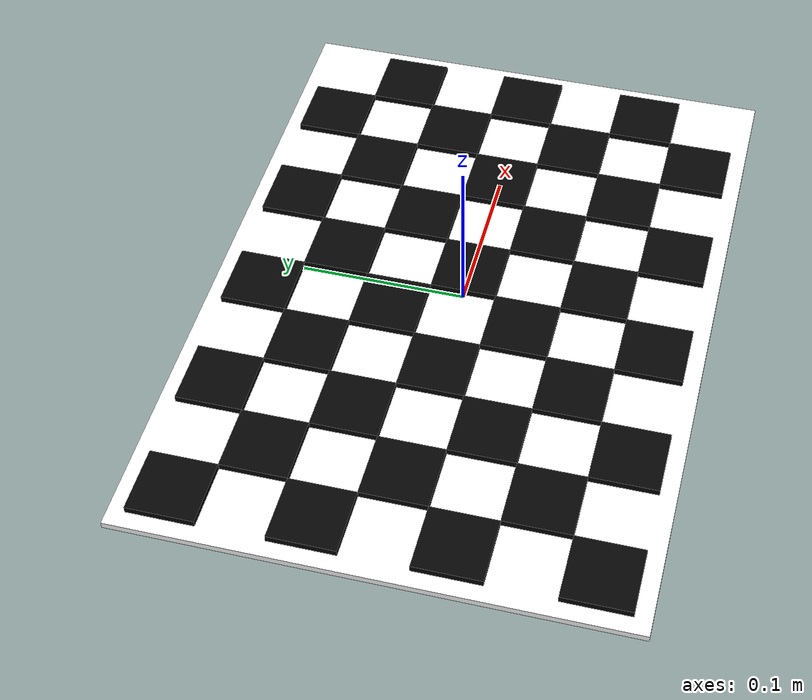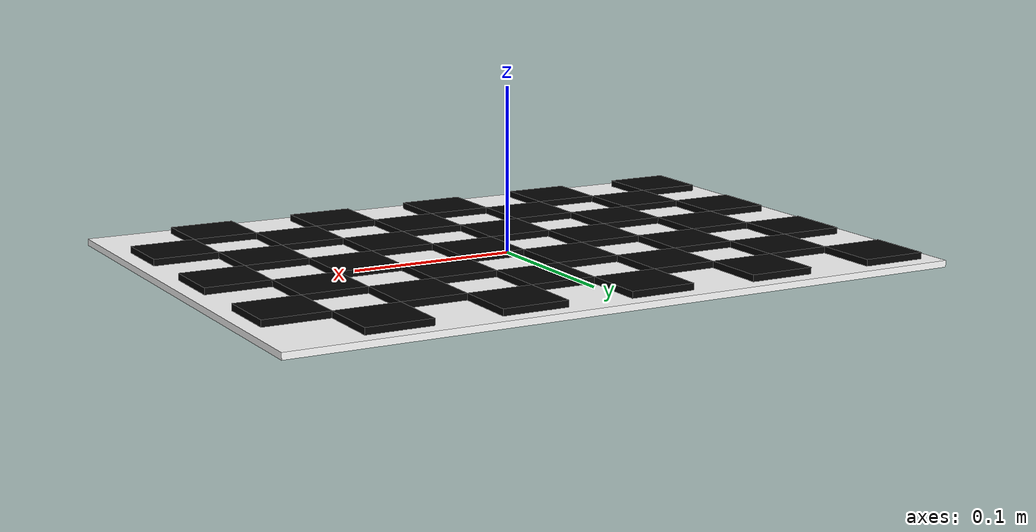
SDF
<?xml version="1.0"?>
<sdf version="1.6">
  <model name="calibration_checkerboard">
    <static>true</static>
    <link name="board">
      <collision name="backing_collision">
        <geometry>
          <box>
            <size>0.42 0.30 0.006</size>
          </box>
        </geometry>
      </collision>
      <visual name="backing">
        <geometry>
          <box>
            <size>0.42 0.30 0.004</size>
          </box>
        </geometry>
        <material>
          <ambient>1 1 1 1</ambient>
          <diffuse>1 1 1 1</diffuse>
        </material>
      </visual>
      <visual name="black_0_0">
        <pose>-0.18 -0.12 0.004 0 0 0</pose>
        <geometry><box><size>0.04 0.04 0.004</size></box></geometry>
        <material><ambient>0.02 0.02 0.02 1</ambient><diffuse>0.02 0.02 0.02 1</diffuse></material>
      </visual>
      <visual name="black_0_2">
        <pose>-0.10 -0.12 0.004 0 0 0</pose>
        <geometry><box><size>0.04 0.04 0.004</size></box></geometry>
        <material><ambient>0.02 0.02 0.02 1</ambient><diffuse>0.02 0.02 0.02 1</diffuse></material>
      </visual>
      <visual name="black_0_4">
        <pose>-0.02 -0.12 0.004 0 0 0</pose>
        <geometry><box><size>0.04 0.04 0.004</size></box></geometry>
        <material><ambient>0.02 0.02 0.02 1</ambient><diffuse>0.02 0.02 0.02 1</diffuse></material>
      </visual>
      <visual name="black_0_6">
        <pose>0.06 -0.12 0.004 0 0 0</pose>
        <geometry><box><size>0.04 0.04 0.004</size></box></geometry>
        <material><ambient>0.02 0.02 0.02 1</ambient><diffuse>0.02 0.02 0.02 1</diffuse></material>
      </visual>
      <visual name="black_0_8">
        <pose>0.14 -0.12 0.004 0 0 0</pose>
        <geometry><box><size>0.04 0.04 0.004</size></box></geometry>
        <material><ambient>0.02 0.02 0.02 1</ambient><diffuse>0.02 0.02 0.02 1</diffuse></material>
      </visual>
      <visual name="black_1_1">
        <pose>-0.14 -0.08 0.004 0 0 0</pose>
        <geometry><box><size>0.04 0.04 0.004</size></box></geometry>
        <material><ambient>0.02 0.02 0.02 1</ambient><diffuse>0.02 0.02 0.02 1</diffuse></material>
      </visual>
      <visual name="black_1_3">
        <pose>-0.06 -0.08 0.004 0 0 0</pose>
        <geometry><box><size>0.04 0.04 0.004</size></box></geometry>
        <material><ambient>0.02 0.02 0.02 1</ambient><diffuse>0.02 0.02 0.02 1</diffuse></material>
      </visual>
      <visual name="black_1_5">
        <pose>0.02 -0.08 0.004 0 0 0</pose>
        <geometry><box><size>0.04 0.04 0.004</size></box></geometry>
        <material><ambient>0.02 0.02 0.02 1</ambient><diffuse>0.02 0.02 0.02 1</diffuse></material>
      </visual>
      <visual name="black_1_7">
        <pose>0.10 -0.08 0.004 0 0 0</pose>
        <geometry><box><size>0.04 0.04 0.004</size></box></geometry>
        <material><ambient>0.02 0.02 0.02 1</ambient><diffuse>0.02 0.02 0.02 1</diffuse></material>
      </visual>
      <visual name="black_1_9">
        <pose>0.18 -0.08 0.004 0 0 0</pose>
        <geometry><box><size>0.04 0.04 0.004</size></box></geometry>
        <material><ambient>0.02 0.02 0.02 1</ambient><diffuse>0.02 0.02 0.02 1</diffuse></material>
      </visual>
      <visual name="black_2_0">
        <pose>-0.18 -0.04 0.004 0 0 0</pose>
        <geometry><box><size>0.04 0.04 0.004</size></box></geometry>
        <material><ambient>0.02 0.02 0.02 1</ambient><diffuse>0.02 0.02 0.02 1</diffuse></material>
      </visual>
      <visual name="black_2_2">
        <pose>-0.10 -0.04 0.004 0 0 0</pose>
        <geometry><box><size>0.04 0.04 0.004</size></box></geometry>
        <material><ambient>0.02 0.02 0.02 1</ambient><diffuse>0.02 0.02 0.02 1</diffuse></material>
      </visual>
      <visual name="black_2_4">
        <pose>-0.02 -0.04 0.004 0 0 0</pose>
        <geometry><box><size>0.04 0.04 0.004</size></box></geometry>
        <material><ambient>0.02 0.02 0.02 1</ambient><diffuse>0.02 0.02 0.02 1</diffuse></material>
      </visual>
      <visual name="black_2_6">
        <pose>0.06 -0.04 0.004 0 0 0</pose>
        <geometry><box><size>0.04 0.04 0.004</size></box></geometry>
        <material><ambient>0.02 0.02 0.02 1</ambient><diffuse>0.02 0.02 0.02 1</diffuse></material>
      </visual>
      <visual name="black_2_8">
        <pose>0.14 -0.04 0.004 0 0 0</pose>
        <geometry><box><size>0.04 0.04 0.004</size></box></geometry>
        <material><ambient>0.02 0.02 0.02 1</ambient><diffuse>0.02 0.02 0.02 1</diffuse></material>
      </visual>
      <visual name="black_3_1">
        <pose>-0.14 0.00 0.004 0 0 0</pose>
        <geometry><box><size>0.04 0.04 0.004</size></box></geometry>
        <material><ambient>0.02 0.02 0.02 1</ambient><diffuse>0.02 0.02 0.02 1</diffuse></material>
      </visual>
      <visual name="black_3_3">
        <pose>-0.06 0.00 0.004 0 0 0</pose>
        <geometry><box><size>0.04 0.04 0.004</size></box></geometry>
        <material><ambient>0.02 0.02 0.02 1</ambient><diffuse>0.02 0.02 0.02 1</diffuse></material>
      </visual>
      <visual name="black_3_5">
        <pose>0.02 0.00 0.004 0 0 0</pose>
        <geometry><box><size>0.04 0.04 0.004</size></box></geometry>
        <material><ambient>0.02 0.02 0.02 1</ambient><diffuse>0.02 0.02 0.02 1</diffuse></material>
      </visual>
      <visual name="black_3_7">
        <pose>0.10 0.00 0.004 0 0 0</pose>
        <geometry><box><size>0.04 0.04 0.004</size></box></geometry>
        <material><ambient>0.02 0.02 0.02 1</ambient><diffuse>0.02 0.02 0.02 1</diffuse></material>
      </visual>
      <visual name="black_3_9">
        <pose>0.18 0.00 0.004 0 0 0</pose>
        <geometry><box><size>0.04 0.04 0.004</size></box></geometry>
        <material><ambient>0.02 0.02 0.02 1</ambient><diffuse>0.02 0.02 0.02 1</diffuse></material>
      </visual>
      <visual name="black_4_0">
        <pose>-0.18 0.04 0.004 0 0 0</pose>
        <geometry><box><size>0.04 0.04 0.004</size></box></geometry>
        <material><ambient>0.02 0.02 0.02 1</ambient><diffuse>0.02 0.02 0.02 1</diffuse></material>
      </visual>
      <visual name="black_4_2">
        <pose>-0.10 0.04 0.004 0 0 0</pose>
        <geometry><box><size>0.04 0.04 0.004</size></box></geometry>
        <material><ambient>0.02 0.02 0.02 1</ambient><diffuse>0.02 0.02 0.02 1</diffuse></material>
      </visual>
      <visual name="black_4_4">
        <pose>-0.02 0.04 0.004 0 0 0</pose>
        <geometry><box><size>0.04 0.04 0.004</size></box></geometry>
        <material><ambient>0.02 0.02 0.02 1</ambient><diffuse>0.02 0.02 0.02 1</diffuse></material>
      </visual>
      <visual name="black_4_6">
        <pose>0.06 0.04 0.004 0 0 0</pose>
        <geometry><box><size>0.04 0.04 0.004</size></box></geometry>
        <material><ambient>0.02 0.02 0.02 1</ambient><diffuse>0.02 0.02 0.02 1</diffuse></material>
      </visual>
      <visual name="black_4_8">
        <pose>0.14 0.04 0.004 0 0 0</pose>
        <geometry><box><size>0.04 0.04 0.004</size></box></geometry>
        <material><ambient>0.02 0.02 0.02 1</ambient><diffuse>0.02 0.02 0.02 1</diffuse></material>
      </visual>
      <visual name="black_5_1">
        <pose>-0.14 0.08 0.004 0 0 0</pose>
        <geometry><box><size>0.04 0.04 0.004</size></box></geometry>
        <material><ambient>0.02 0.02 0.02 1</ambient><diffuse>0.02 0.02 0.02 1</diffuse></material>
      </visual>
      <visual name="black_5_3">
        <pose>-0.06 0.08 0.004 0 0 0</pose>
        <geometry><box><size>0.04 0.04 0.004</size></box></geometry>
        <material><ambient>0.02 0.02 0.02 1</ambient><diffuse>0.02 0.02 0.02 1</diffuse></material>
      </visual>
      <visual name="black_5_5">
        <pose>0.02 0.08 0.004 0 0 0</pose>
        <geometry><box><size>0.04 0.04 0.004</size></box></geometry>
        <material><ambient>0.02 0.02 0.02 1</ambient><diffuse>0.02 0.02 0.02 1</diffuse></material>
      </visual>
      <visual name="black_5_7">
        <pose>0.10 0.08 0.004 0 0 0</pose>
        <geometry><box><size>0.04 0.04 0.004</size></box></geometry>
        <material><ambient>0.02 0.02 0.02 1</ambient><diffuse>0.02 0.02 0.02 1</diffuse></material>
      </visual>
      <visual name="black_5_9">
        <pose>0.18 0.08 0.004 0 0 0</pose>
        <geometry><box><size>0.04 0.04 0.004</size></box></geometry>
        <material><ambient>0.02 0.02 0.02 1</ambient><diffuse>0.02 0.02 0.02 1</diffuse></material>
      </visual>
      <visual name="black_6_0">
        <pose>-0.18 0.12 0.004 0 0 0</pose>
        <geometry><box><size>0.04 0.04 0.004</size></box></geometry>
        <material><ambient>0.02 0.02 0.02 1</ambient><diffuse>0.02 0.02 0.02 1</diffuse></material>
      </visual>
      <visual name="black_6_2">
        <pose>-0.10 0.12 0.004 0 0 0</pose>
        <geometry><box><size>0.04 0.04 0.004</size></box></geometry>
        <material><ambient>0.02 0.02 0.02 1</ambient><diffuse>0.02 0.02 0.02 1</diffuse></material>
      </visual>
      <visual name="black_6_4">
        <pose>-0.02 0.12 0.004 0 0 0</pose>
        <geometry><box><size>0.04 0.04 0.004</size></box></geometry>
        <material><ambient>0.02 0.02 0.02 1</ambient><diffuse>0.02 0.02 0.02 1</diffuse></material>
      </visual>
      <visual name="black_6_6">
        <pose>0.06 0.12 0.004 0 0 0</pose>
        <geometry><box><size>0.04 0.04 0.004</size></box></geometry>
        <material><ambient>0.02 0.02 0.02 1</ambient><diffuse>0.02 0.02 0.02 1</diffuse></material>
      </visual>
      <visual name="black_6_8">
        <pose>0.14 0.12 0.004 0 0 0</pose>
        <geometry><box><size>0.04 0.04 0.004</size></box></geometry>
        <material><ambient>0.02 0.02 0.02 1</ambient><diffuse>0.02 0.02 0.02 1</diffuse></material>
      </visual>
    </link>
  </model>
</sdf>
